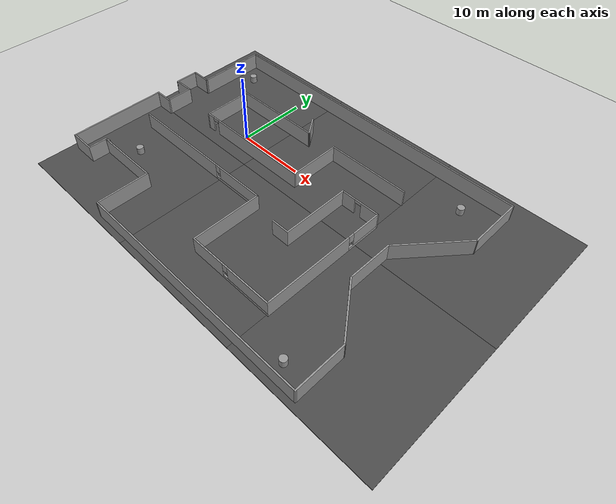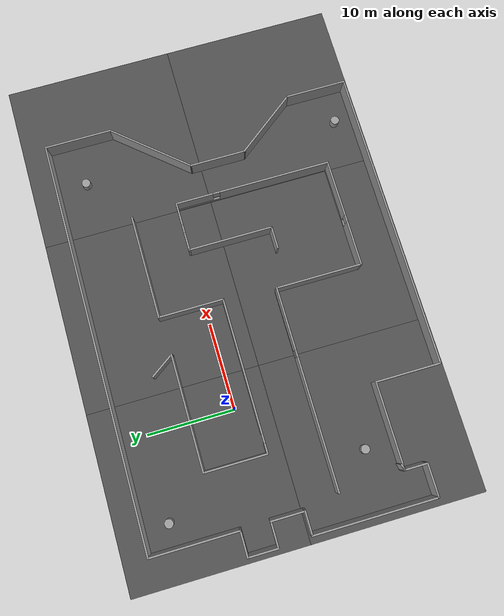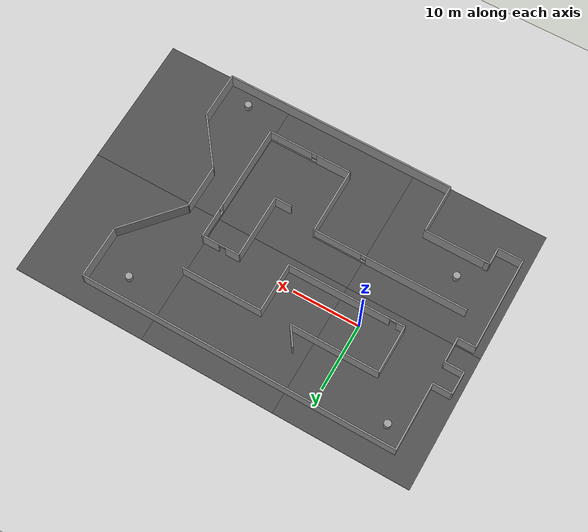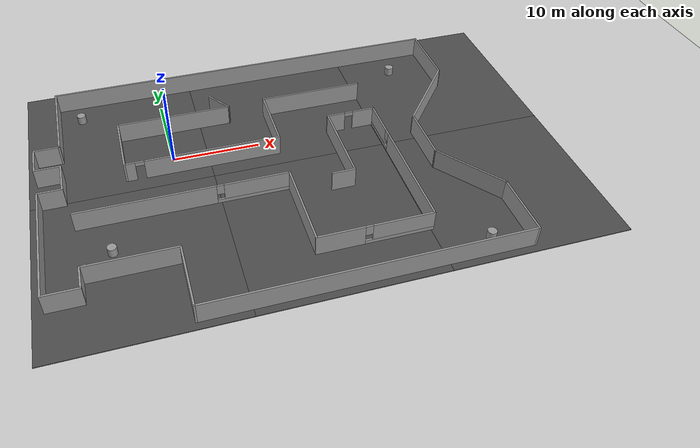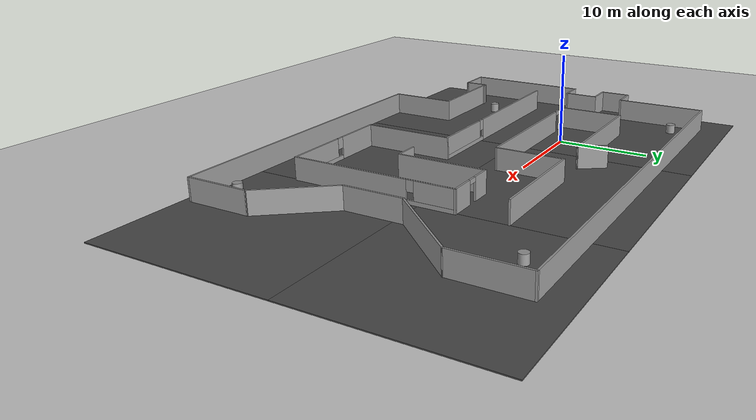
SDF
<sdf version="1.4">
 <world name="default">
  <light name="sun" type="directional">
   <pose>0 0 10 0 -0 0</pose>
   <diffuse>0.8 0.8 0.8 1</diffuse>
   <specular>0.2 0.2 0.2 1</specular>
   <attenuation>
    <range>1000</range>
    <constant>0.9</constant>
    <linear>0.01</linear>
    <quadratic>0.001</quadratic>
   </attenuation>
   <direction>-0.5 0.1 -0.9</direction>
  </light>
  <model name="ground_plane">
   <static>1</static>
   <link name="link">
    <collision name="collision">
     <geometry><plane><normal>0 0 1</normal><size>100 100</size></plane></geometry>
     <surface><friction><ode><mu>100</mu><mu2>50</mu2></ode></friction></surface>
    </collision>
    <visual name="visual">
     <cast_shadows>0</cast_shadows>
     <geometry><plane><normal>0 0 1</normal><size>100 100</size></plane></geometry>
     <material>
      <script><uri>file://media/materials/scripts/gazebo.material</uri><name>Gazebo/Grey</name></script>
     </material>
    </visual>
    <velocity_decay><linear>0</linear><angular>0</angular></velocity_decay>
   </link>
  </model>
  <physics type="ode">
   <max_step_size>0.001</max_step_size>
   <real_time_factor>1</real_time_factor>
   <real_time_update_rate>1000</real_time_update_rate>
   <gravity>0 0 -9.8</gravity>
  </physics>
  <scene><ambient>0.4 0.4 0.4 1</ambient><background>0.7 0.7 0.7 1</background><shadows>1</shadows></scene>
  <model name="corridor_hard">
   <link name="Wall_0">
    <pose>7.08513 -1.27 0 0 -0 0</pose>
    <visual name="Wall_0_Visual_0">
     <pose>-4.0588 0 1.25 0 -0 0</pose>
     <geometry><box><size>15.0527 0.2 2.5</size></box></geometry>
     <material>
      <script><uri>file://media/materials/scripts/gazebo.material</uri><name>Gazebo/Grey</name></script>
     </material>
    </visual>
    <collision name="Wall_0_Collision_0">
     <geometry><box><size>15.0527 0.2 2.5</size></box></geometry>
     <pose>-4.0588 0 1.25 0 -0 0</pose>
    </collision>
    <visual name="Wall_0_Visual_1">
     <pose>7.52635 0 0.25 0 -0 0</pose>
     <geometry><box><size>8.1176 0.2 0.5</size></box></geometry>
     <material>
      <script><uri>file://media/materials/scripts/gazebo.material</uri><name>Gazebo/Grey</name></script>
     </material>
    </visual>
    <collision name="Wall_0_Collision_1">
     <geometry><box><size>8.1176 0.2 0.5</size></box></geometry>
     <pose>7.52635 0 0.25 0 -0 0</pose>
    </collision>
    <visual name="Wall_0_Visual_2">
     <pose>7.92635 0 1.5 0 -0 0</pose>
     <geometry><box><size>7.3176 0.2 2</size></box></geometry>
     <material>
      <script><uri>file://media/materials/scripts/gazebo.material</uri><name>Gazebo/Grey</name></script>
     </material>
    </visual>
    <collision name="Wall_0_Collision_2">
     <geometry><box><size>7.3176 0.2 2</size></box></geometry>
     <pose>7.92635 0 1.5 0 -0 0</pose>
    </collision>
    <visual name="Wall_0_Visual_3">
     <pose>3.86755 0 1.9 0 -0 0</pose>
     <geometry><box><size>0.8 0.2 1.2</size></box></geometry>
     <material>
      <script><uri>file://media/materials/scripts/gazebo.material</uri><name>Gazebo/Grey</name></script>
     </material>
    </visual>
    <collision name="Wall_0_Collision_3">
     <geometry><box><size>0.8 0.2 1.2</size></box></geometry>
     <pose>3.86755 0 1.9 0 -0 0</pose>
    </collision>
    <velocity_decay><linear>0</linear><angular>0</angular></velocity_decay>
   </link>
   <link name="Wall_1">
    <collision name="Wall_1_Collision">
     <geometry><box><size>10.143 0.2 2.5</size></box></geometry>
     <pose>0 0 1.25 0 -0 0</pose>
    </collision>
    <visual name="Wall_1_Visual">
     <pose>0 0 1.25 0 -0 0</pose>
     <geometry><box><size>10.143 0.2 2.5</size></box></geometry>
     <material>
      <script><uri>file://media/materials/scripts/gazebo.material</uri><name>Gazebo/Grey</name></script>
     </material>
    </visual>
    <velocity_decay><linear>0</linear><angular>0</angular></velocity_decay>
    <pose>18.5703 -6.24148 0 0 0 -1.5708</pose>
   </link>
   <link name="Wall_10">
    <pose>10.2563 4.8489 0 0 -0 3.14159</pose>
    <visual name="Wall_10_Visual_0">
     <pose>-1.13402 0 1.25 0 -0 0</pose>
     <geometry><box><size>15.409 0.2 2.5</size></box></geometry>
     <material>
      <script><uri>file://media/materials/scripts/gazebo.material</uri><name>Gazebo/Grey</name></script>
     </material>
    </visual>
    <collision name="Wall_10_Collision_0">
     <geometry><box><size>15.409 0.2 2.5</size></box></geometry>
     <pose>-1.13402 0 1.25 0 -0 0</pose>
    </collision>
    <visual name="Wall_10_Visual_1">
     <pose>8.20448 0 1.25 0 -0 0</pose>
     <geometry><box><size>1.26805 0.2 2.5</size></box></geometry>
     <material>
      <script><uri>file://media/materials/scripts/gazebo.material</uri><name>Gazebo/Grey</name></script>
     </material>
    </visual>
    <collision name="Wall_10_Collision_1">
     <geometry><box><size>1.26805 0.2 2.5</size></box></geometry>
     <pose>8.20448 0 1.25 0 -0 0</pose>
    </collision>
    <visual name="Wall_10_Visual_2">
     <pose>7.07045 0 2.25 0 -0 0</pose>
     <geometry><box><size>1 0.2 0.5</size></box></geometry>
     <material>
      <script><uri>file://media/materials/scripts/gazebo.material</uri><name>Gazebo/Grey</name></script>
     </material>
    </visual>
    <collision name="Wall_10_Collision_2">
     <geometry><box><size>1 0.2 0.5</size></box></geometry>
     <pose>7.07045 0 2.25 0 -0 0</pose>
    </collision>
    <velocity_decay><linear>0</linear><angular>0</angular></velocity_decay>
   </link>
   <link name="Wall_11">
    <collision name="Wall_11_Collision">
     <geometry><box><size>7.34646 0.2 2.5</size></box></geometry>
     <pose>0 0 1.25 0 -0 0</pose>
    </collision>
    <visual name="Wall_11_Visual">
     <pose>0 0 1.25 0 -0 0</pose>
     <geometry><box><size>7.34646 0.2 2.5</size></box></geometry>
     <material>
      <script><uri>file://media/materials/scripts/gazebo.material</uri><name>Gazebo/Grey</name></script>
     </material>
    </visual>
    <velocity_decay><linear>0</linear><angular>0</angular></velocity_decay>
    <pose>1.51781 8.42213 0 0 -0 1.5708</pose>
   </link>
   <link name="Wall_12">
    <collision name="Wall_12_Collision">
     <geometry><box><size>13.2901 0.2 2.5</size></box></geometry>
     <pose>0 0 1.25 0 -0 0</pose>
    </collision>
    <visual name="Wall_12_Visual">
     <pose>0 0 1.25 0 -0 0</pose>
     <geometry><box><size>13.2901 0.2 2.5</size></box></geometry>
     <material>
      <script><uri>file://media/materials/scripts/gazebo.material</uri><name>Gazebo/Grey</name></script>
     </material>
    </visual>
    <velocity_decay><linear>0</linear><angular>0</angular></velocity_decay>
    <pose>8.06284 11.9954 0 0 -0 0</pose>
   </link>
   <link name="Wall_13">
    <collision name="Wall_13_Collision">
     <geometry><box><size>3.30123 0.2 2.5</size></box></geometry>
     <pose>0 0 1.25 0 -0 0</pose>
    </collision>
    <visual name="Wall_13_Visual">
     <pose>0 0 1.25 0 -0 0</pose>
     <geometry><box><size>3.30123 0.2 2.5</size></box></geometry>
     <material>
      <script><uri>file://media/materials/scripts/gazebo.material</uri><name>Gazebo/Grey</name></script>
     </material>
    </visual>
    <velocity_decay><linear>0</linear><angular>0</angular></velocity_decay>
    <pose>13.7234 13.269 0 0 -0 2.17778</pose>
   </link>
   <link name="Wall_15">
    <collision name="Wall_15_Collision">
     <geometry><box><size>9.77753 0.2 2.5</size></box></geometry>
     <pose>0 0 1.25 0 -0 0</pose>
    </collision>
    <visual name="Wall_15_Visual">
     <pose>0 0 1.25 0 -0 0</pose>
     <geometry><box><size>9.77753 0.2 2.5</size></box></geometry>
     <material>
      <script><uri>file://media/materials/scripts/gazebo.material</uri><name>Gazebo/Grey</name></script>
     </material>
    </visual>
    <velocity_decay><linear>0</linear><angular>0</angular></velocity_decay>
    <pose>0.789889 -8.67706 0 0 -0 0</pose>
   </link>
   <link name="Wall_16">
    <collision name="Wall_16_Collision">
     <geometry><box><size>7.62527 0.2 2.5</size></box></geometry>
     <pose>0 0 1.25 0 -0 0</pose>
    </collision>
    <visual name="Wall_16_Visual">
     <pose>0 0 1.25 0 -0 0</pose>
     <geometry><box><size>7.62527 0.2 2.5</size></box></geometry>
     <material>
      <script><uri>file://media/materials/scripts/gazebo.material</uri><name>Gazebo/Grey</name></script>
     </material>
    </visual>
    <velocity_decay><linear>0</linear><angular>0</angular></velocity_decay>
    <pose>5.57865 -12.3897 0 0 0 -1.5708</pose>
   </link>
   <link name="Wall_17">
    <collision name="Wall_17_Collision">
     <geometry><box><size>34.9589 0.2 2.5</size></box></geometry>
     <pose>0 0 1.25 0 -0 0</pose>
    </collision>
    <visual name="Wall_17_Visual">
     <pose>0 0 1.25 0 -0 0</pose>
     <geometry><box><size>34.9589 0.2 2.5</size></box></geometry>
     <material>
      <script><uri>file://media/materials/scripts/gazebo.material</uri><name>Gazebo/Grey</name></script>
     </material>
    </visual>
    <velocity_decay><linear>0</linear><angular>0</angular></velocity_decay>
    <pose>22.9581 -16.1023 0 0 -0 0</pose>
   </link>
   <link name="Wall_18">
    <collision name="Wall_18_Collision">
     <geometry><box><size>7.19482 0.2 2.5</size></box></geometry>
     <pose>0 0 1.25 0 -0 0</pose>
    </collision>
    <visual name="Wall_18_Visual">
     <pose>0 0 1.25 0 -0 0</pose>
     <geometry><box><size>7.19482 0.2 2.5</size></box></geometry>
     <material>
      <script><uri>file://media/materials/scripts/gazebo.material</uri><name>Gazebo/Grey</name></script>
     </material>
    </visual>
    <velocity_decay><linear>0</linear><angular>0</angular></velocity_decay>
    <pose>40.3375 -12.6049 0 0 -0 1.5708</pose>
   </link>
   <link name="Wall_19">
    <collision name="Wall_19_Collision">
     <geometry><box><size>8.72317 0.2 2.5</size></box></geometry>
     <pose>0 0 1.25 0 -0 0</pose>
    </collision>
    <visual name="Wall_19_Visual">
     <pose>0 0 1.25 0 -0 0</pose>
     <geometry><box><size>8.72317 0.2 2.5</size></box></geometry>
     <material>
      <script><uri>file://media/materials/scripts/gazebo.material</uri><name>Gazebo/Grey</name></script>
     </material>
    </visual>
    <velocity_decay><linear>0</linear><angular>0</angular></velocity_decay>
    <pose>37.7548 -5.71772 0 0 -0 2.22187</pose>
   </link>
   <link name="Wall_2">
    <pose>24.8676 -11.213 0 0 -0 0</pose>
    <visual name="Wall_2_Visual_0">
     <pose>-3.75906 0 1.25 0 -0 0</pose>
     <geometry><box><size>5.27669 0.2 2.5</size></box></geometry>
     <material>
      <script><uri>file://media/materials/scripts/gazebo.material</uri><name>Gazebo/Grey</name></script>
     </material>
    </visual>
    <collision name="Wall_2_Collision_0">
     <geometry><box><size>5.27669 0.2 2.5</size></box></geometry>
     <pose>-3.75906 0 1.25 0 -0 0</pose>
    </collision>
    <visual name="Wall_2_Visual_1">
     <pose>2.63834 0 0.25 0 -0 0</pose>
     <geometry><box><size>7.51811 0.2 0.5</size></box></geometry>
     <material>
      <script><uri>file://media/materials/scripts/gazebo.material</uri><name>Gazebo/Grey</name></script>
     </material>
    </visual>
    <collision name="Wall_2_Collision_1">
     <geometry><box><size>7.51811 0.2 0.5</size></box></geometry>
     <pose>2.63834 0 0.25 0 -0 0</pose>
    </collision>
    <visual name="Wall_2_Visual_2">
     <pose>3.03834 0 1.5 0 -0 0</pose>
     <geometry><box><size>6.71811 0.2 2</size></box></geometry>
     <material>
      <script><uri>file://media/materials/scripts/gazebo.material</uri><name>Gazebo/Grey</name></script>
     </material>
    </visual>
    <collision name="Wall_2_Collision_2">
     <geometry><box><size>6.71811 0.2 2</size></box></geometry>
     <pose>3.03834 0 1.5 0 -0 0</pose>
    </collision>
    <visual name="Wall_2_Visual_3">
     <pose>-0.720713 0 1.9 0 -0 0</pose>
     <geometry><box><size>0.8 0.2 1.2</size></box></geometry>
     <material>
      <script><uri>file://media/materials/scripts/gazebo.material</uri><name>Gazebo/Grey</name></script>
     </material>
    </visual>
    <collision name="Wall_2_Collision_3">
     <geometry><box><size>0.8 0.2 1.2</size></box></geometry>
     <pose>-0.720713 0 1.9 0 -0 0</pose>
    </collision>
    <velocity_decay><linear>0</linear><angular>0</angular></velocity_decay>
   </link>
   <link name="Wall_20">
    <collision name="Wall_20_Collision">
     <geometry><box><size>6.65676 0.2 2.5</size></box></geometry>
     <pose>0 0 1.25 0 -0 0</pose>
    </collision>
    <visual name="Wall_20_Visual">
     <pose>0 0 1.25 0 -0 0</pose>
     <geometry><box><size>6.65676 0.2 2.5</size></box></geometry>
     <material>
      <script><uri>file://media/materials/scripts/gazebo.material</uri><name>Gazebo/Grey</name></script>
     </material>
    </visual>
    <velocity_decay><linear>0</linear><angular>0</angular></velocity_decay>
    <pose>35.1721 0.900462 0 0 -0 1.5708</pose>
   </link>
   <link name="Wall_21">
    <collision name="Wall_21_Collision">
     <geometry><box><size>10.6584 0.2 2.5</size></box></geometry>
     <pose>0 0 1.25 0 -0 0</pose>
    </collision>
    <visual name="Wall_21_Visual">
     <pose>0 0 1.25 0 -0 0</pose>
     <geometry><box><size>10.6584 0.2 2.5</size></box></geometry>
     <material>
      <script><uri>file://media/materials/scripts/gazebo.material</uri><name>Gazebo/Grey</name></script>
     </material>
    </visual>
    <velocity_decay><linear>0</linear><angular>0</angular></velocity_decay>
    <pose>38.5619 8.11051 0 0 -0 0.865518</pose>
   </link>
   <link name="Wall_22">
    <collision name="Wall_22_Collision">
     <geometry><box><size>7.94811 0.2 2.5</size></box></geometry>
     <pose>0 0 1.25 0 -0 0</pose>
    </collision>
    <visual name="Wall_22_Visual">
     <pose>0 0 1.25 0 -0 0</pose>
     <geometry><box><size>7.94811 0.2 2.5</size></box></geometry>
     <material>
      <script><uri>file://media/materials/scripts/gazebo.material</uri><name>Gazebo/Grey</name></script>
     </material>
    </visual>
    <velocity_decay><linear>0</linear><angular>0</angular></velocity_decay>
    <pose>41.9517 15.9662 0 0 -0 1.5708</pose>
   </link>
   <link name="Wall_23">
    <collision name="Wall_23_Collision">
     <geometry><box><size>47.3343 0.2 2.5</size></box></geometry>
     <pose>0 0 1.25 0 -0 0</pose>
    </collision>
    <visual name="Wall_23_Visual">
     <pose>0 0 1.25 0 -0 0</pose>
     <geometry><box><size>47.3343 0.2 2.5</size></box></geometry>
     <material>
      <script><uri>file://media/materials/scripts/gazebo.material</uri><name>Gazebo/Grey</name></script>
     </material>
    </visual>
    <velocity_decay><linear>0</linear><angular>0</angular></velocity_decay>
    <pose>18.3846 19.8403 0 0 -0 3.14159</pose>
   </link>
   <link name="Wall_24">
    <collision name="Wall_24_Collision">
     <geometry><box><size>10.208 0.2 2.5</size></box></geometry>
     <pose>0 0 1.25 0 -0 0</pose>
    </collision>
    <visual name="Wall_24_Visual">
     <pose>0 0 1.25 0 -0 0</pose>
     <geometry><box><size>10.208 0.2 2.5</size></box></geometry>
     <material>
      <script><uri>file://media/materials/scripts/gazebo.material</uri><name>Gazebo/Grey</name></script>
     </material>
    </visual>
    <velocity_decay><linear>0</linear><angular>0</angular></velocity_decay>
    <pose>-5.18261 14.8363 0 0 0 -1.5708</pose>
   </link>
   <link name="Wall_25">
    <collision name="Wall_25_Collision">
     <geometry><box><size>2.99793 0.2 2.5</size></box></geometry>
     <pose>0 0 1.25 0 -0 0</pose>
    </collision>
    <visual name="Wall_25_Visual">
     <pose>0 0 1.25 0 -0 0</pose>
     <geometry><box><size>2.99793 0.2 2.5</size></box></geometry>
     <material>
      <script><uri>file://media/materials/scripts/gazebo.material</uri><name>Gazebo/Grey</name></script>
     </material>
    </visual>
    <velocity_decay><linear>0</linear><angular>0</angular></velocity_decay>
    <pose>-6.58158 9.83231 0 0 -0 3.14159</pose>
   </link>
   <link name="Wall_26">
    <collision name="Wall_26_Collision">
     <geometry><box><size>3.53599 0.2 2.5</size></box></geometry>
     <pose>0 0 1.25 0 -0 0</pose>
    </collision>
    <visual name="Wall_26_Visual">
     <pose>0 0 1.25 0 -0 0</pose>
     <geometry><box><size>3.53599 0.2 2.5</size></box></geometry>
     <material>
      <script><uri>file://media/materials/scripts/gazebo.material</uri><name>Gazebo/Grey</name></script>
     </material>
    </visual>
    <velocity_decay><linear>0</linear><angular>0</angular></velocity_decay>
    <pose>-7.98054 8.16432 0 0 0 -1.5708</pose>
   </link>
   <link name="Wall_27">
    <collision name="Wall_27_Collision">
     <geometry><box><size>2.99793 0.2 2.5</size></box></geometry>
     <pose>0 0 1.25 0 -0 0</pose>
    </collision>
    <visual name="Wall_27_Visual">
     <pose>0 0 1.25 0 -0 0</pose>
     <geometry><box><size>2.99793 0.2 2.5</size></box></geometry>
     <material>
      <script><uri>file://media/materials/scripts/gazebo.material</uri><name>Gazebo/Grey</name></script>
     </material>
    </visual>
    <velocity_decay><linear>0</linear><angular>0</angular></velocity_decay>
    <pose>-6.58158 6.49632 0 0 -0 0</pose>
   </link>
   <link name="Wall_28">
    <collision name="Wall_28_Collision">
     <geometry><box><size>3.96644 0.2 2.5</size></box></geometry>
     <pose>0 0 1.25 0 -0 0</pose>
    </collision>
    <visual name="Wall_28_Visual">
     <pose>0 0 1.25 0 -0 0</pose>
     <geometry><box><size>3.96644 0.2 2.5</size></box></geometry>
     <material>
      <script><uri>file://media/materials/scripts/gazebo.material</uri><name>Gazebo/Grey</name></script>
     </material>
    </visual>
    <velocity_decay><linear>0</linear><angular>0</angular></velocity_decay>
    <pose>-5.18261 4.6131 0 0 0 -1.5708</pose>
   </link>
   <link name="Wall_29">
    <collision name="Wall_29_Collision">
     <geometry><box><size>2.7827 0.2 2.5</size></box></geometry>
     <pose>0 0 1.25 0 -0 0</pose>
    </collision>
    <visual name="Wall_29_Visual">
     <pose>0 0 1.25 0 -0 0</pose>
     <geometry><box><size>2.7827 0.2 2.5</size></box></geometry>
     <material>
      <script><uri>file://media/materials/scripts/gazebo.material</uri><name>Gazebo/Grey</name></script>
     </material>
    </visual>
    <velocity_decay><linear>0</linear><angular>0</angular></velocity_decay>
    <pose>-6.47396 2.72988 0 0 -0 3.14159</pose>
   </link>
   <link name="Wall_3">
    <pose>31.165 -2.12067 0 0 -0 1.5708</pose>
    <visual name="Wall_3_Visual_0">
     <pose>-2.63055 0 1.25 0 -0 0</pose>
     <geometry><box><size>13.1235 0.2 2.5</size></box></geometry>
     <material>
      <script><uri>file://media/materials/scripts/gazebo.material</uri><name>Gazebo/Grey</name></script>
     </material>
    </visual>
    <collision name="Wall_3_Collision_0">
     <geometry><box><size>13.1235 0.2 2.5</size></box></geometry>
     <pose>-2.63055 0 1.25 0 -0 0</pose>
    </collision>
    <visual name="Wall_3_Visual_1">
     <pose>6.56175 0 0.25 0 -0 0</pose>
     <geometry><box><size>5.2611 0.2 0.5</size></box></geometry>
     <material>
      <script><uri>file://media/materials/scripts/gazebo.material</uri><name>Gazebo/Grey</name></script>
     </material>
    </visual>
    <collision name="Wall_3_Collision_1">
     <geometry><box><size>5.2611 0.2 0.5</size></box></geometry>
     <pose>6.56175 0 0.25 0 -0 0</pose>
    </collision>
    <visual name="Wall_3_Visual_2">
     <pose>6.96175 0 1.5 0 -0 0</pose>
     <geometry><box><size>4.4611 0.2 2</size></box></geometry>
     <material>
      <script><uri>file://media/materials/scripts/gazebo.material</uri><name>Gazebo/Grey</name></script>
     </material>
    </visual>
    <collision name="Wall_3_Collision_2">
     <geometry><box><size>4.4611 0.2 2</size></box></geometry>
     <pose>6.96175 0 1.5 0 -0 0</pose>
    </collision>
    <visual name="Wall_3_Visual_3">
     <pose>4.3312 0 1.9 0 -0 0</pose>
     <geometry><box><size>0.8 0.2 1.2</size></box></geometry>
     <material>
      <script><uri>file://media/materials/scripts/gazebo.material</uri><name>Gazebo/Grey</name></script>
     </material>
    </visual>
    <collision name="Wall_3_Collision_3">
     <geometry><box><size>0.8 0.2 1.2</size></box></geometry>
     <pose>4.3312 0 1.9 0 -0 0</pose>
    </collision>
    <velocity_decay><linear>0</linear><angular>0</angular></velocity_decay>
   </link>
   <link name="Wall_30">
    <collision name="Wall_30_Collision">
     <geometry><box><size>14.1896 0.2 2.5</size></box></geometry>
     <pose>0 0 1.25 0 -0 0</pose>
    </collision>
    <visual name="Wall_30_Visual">
     <pose>0 0 1.25 0 -0 0</pose>
     <geometry><box><size>14.1896 0.2 2.5</size></box></geometry>
     <material>
      <script><uri>file://media/materials/scripts/gazebo.material</uri><name>Gazebo/Grey</name></script>
     </material>
    </visual>
    <velocity_decay><linear>0</linear><angular>0</angular></velocity_decay>
    <pose>-7.76532 -4.26494 0 0 0 -1.5708</pose>
   </link>
   <link name="Wall_31">
    <collision name="Wall_31_Collision">
     <geometry><box><size>3.85883 0.2 2.5</size></box></geometry>
     <pose>0 0 1.25 0 -0 0</pose>
    </collision>
    <visual name="Wall_31_Visual">
     <pose>0 0 1.25 0 -0 0</pose>
     <geometry><box><size>3.85883 0.2 2.5</size></box></geometry>
     <material>
      <script><uri>file://media/materials/scripts/gazebo.material</uri><name>Gazebo/Grey</name></script>
     </material>
    </visual>
    <velocity_decay><linear>0</linear><angular>0</angular></velocity_decay>
    <pose>-5.9359 -11.2598 0 0 -0 0</pose>
   </link>
   <link name="Wall_32">
    <collision name="Wall_32_Collision">
     <geometry><box><size>2.77802 0.2 2.5</size></box></geometry>
     <pose>0 0 1.25 0 -0 0</pose>
    </collision>
    <visual name="Wall_32_Visual">
     <pose>0 0 1.25 0 -0 0</pose>
     <geometry><box><size>2.77802 0.2 2.5</size></box></geometry>
     <material>
      <script><uri>file://media/materials/scripts/gazebo.material</uri><name>Gazebo/Grey</name></script>
     </material>
    </visual>
    <velocity_decay><linear>0</linear><angular>0</angular></velocity_decay>
    <pose>-4.10649 -9.97076 0 0 -0 1.5708</pose>
   </link>
   <link name="Wall_33">
    <collision name="Wall_33_Collision">
     <geometry><box><size>0.799464 0.2 2.5</size></box></geometry>
     <pose>0 0 1.25 0 -0 0</pose>
    </collision>
    <visual name="Wall_33_Visual">
     <pose>0 0 1.25 0 -0 0</pose>
     <geometry><box><size>0.799464 0.2 2.5</size></box></geometry>
     <material>
      <script><uri>file://media/materials/scripts/gazebo.material</uri><name>Gazebo/Grey</name></script>
     </material>
    </visual>
    <velocity_decay><linear>0</linear><angular>0</angular></velocity_decay>
    <pose>-3.81296 -8.62107 0 0 -0 0.203868</pose>
   </link>
   <link name="Wall_4">
    <pose>28.3347 6.97161 0 0 -0 3.14159</pose>
    <visual name="Wall_4_Visual_0">
     <pose>-1.58634 0 1.25 0 -0 0</pose>
     <geometry><box><size>2.68789 0.2 2.5</size></box></geometry>
     <material>
      <script><uri>file://media/materials/scripts/gazebo.material</uri><name>Gazebo/Grey</name></script>
     </material>
    </visual>
    <collision name="Wall_4_Collision_0">
     <geometry><box><size>2.68789 0.2 2.5</size></box></geometry>
     <pose>-1.58634 0 1.25 0 -0 0</pose>
    </collision>
    <visual name="Wall_4_Visual_1">
     <pose>1.84395 0 1.25 0 -0 0</pose>
     <geometry><box><size>2.17268 0.2 2.5</size></box></geometry>
     <material>
      <script><uri>file://media/materials/scripts/gazebo.material</uri><name>Gazebo/Grey</name></script>
     </material>
    </visual>
    <collision name="Wall_4_Collision_1">
     <geometry><box><size>2.17268 0.2 2.5</size></box></geometry>
     <pose>1.84395 0 1.25 0 -0 0</pose>
    </collision>
    <visual name="Wall_4_Visual_2">
     <pose>0.257608 0 2.25 0 -0 0</pose>
     <geometry><box><size>1 0.2 0.5</size></box></geometry>
     <material>
      <script><uri>file://media/materials/scripts/gazebo.material</uri><name>Gazebo/Grey</name></script>
     </material>
    </visual>
    <collision name="Wall_4_Collision_2">
     <geometry><box><size>1 0.2 0.5</size></box></geometry>
     <pose>0.257608 0 2.25 0 -0 0</pose>
    </collision>
    <velocity_decay><linear>0</linear><angular>0</angular></velocity_decay>
   </link>
   <link name="Wall_5">
    <collision name="Wall_5_Collision">
     <geometry><box><size>9.89372 0.2 2.5</size></box></geometry>
     <pose>0 0 1.25 0 -0 0</pose>
    </collision>
    <visual name="Wall_5_Visual">
     <pose>0 0 1.25 0 -0 0</pose>
     <geometry><box><size>9.89372 0.2 2.5</size></box></geometry>
     <material>
      <script><uri>file://media/materials/scripts/gazebo.material</uri><name>Gazebo/Grey</name></script>
     </material>
    </visual>
    <velocity_decay><linear>0</linear><angular>0</angular></velocity_decay>
    <pose>25.5045 2.12475 0 0 0 -1.5708</pose>
   </link>
   <link name="Wall_6">
    <collision name="Wall_6_Collision">
     <geometry><box><size>2.6765 0.2 2.5</size></box></geometry>
     <pose>0 0 1.25 0 -0 0</pose>
    </collision>
    <visual name="Wall_6_Visual">
     <pose>0 0 1.25 0 -0 0</pose>
     <geometry><box><size>2.6765 0.2 2.5</size></box></geometry>
     <material>
      <script><uri>file://media/materials/scripts/gazebo.material</uri><name>Gazebo/Grey</name></script>
     </material>
    </visual>
    <velocity_decay><linear>0</linear><angular>0</angular></velocity_decay>
    <pose>24.2662 -2.72211 0 0 -0 3.14159</pose>
   </link>
   <link name="Wall_8">
    <collision name="Wall_8_Collision">
     <geometry><box><size>12.1579 0.2 2.5</size></box></geometry>
     <pose>0 0 1.25 0 -0 0</pose>
    </collision>
    <visual name="Wall_8_Visual">
     <pose>0 0 1.25 0 -0 0</pose>
     <geometry><box><size>12.1579 0.2 2.5</size></box></geometry>
     <material>
      <script><uri>file://media/materials/scripts/gazebo.material</uri><name>Gazebo/Grey</name></script>
     </material>
    </visual>
    <velocity_decay><linear>0</linear><angular>0</angular></velocity_decay>
    <pose>24.9738 12.2784 0 0 -0 3.14159</pose>
   </link>
   <link name="Wall_9">
    <collision name="Wall_9_Collision">
     <geometry><box><size>7.62949 0.2 2.5</size></box></geometry>
     <pose>0 0 1.25 0 -0 0</pose>
    </collision>
    <visual name="Wall_9_Visual">
     <pose>0 0 1.25 0 -0 0</pose>
     <geometry><box><size>7.62949 0.2 2.5</size></box></geometry>
     <material>
      <script><uri>file://media/materials/scripts/gazebo.material</uri><name>Gazebo/Grey</name></script>
     </material>
    </visual>
    <velocity_decay><linear>0</linear><angular>0</angular></velocity_decay>
    <pose>18.9948 8.56364 0 0 0 -1.5708</pose>
   </link>
   <static>1</static>
   <pose>-7 -7 0 0 -0 0</pose>
  </model>
  <model name="asphalt_plane">
   <static>1</static>
   <link name="link">
    <collision name="collision"><geometry><box><size>20 20 0.1</size></box></geometry></collision>
    <visual name="visual">
     <cast_shadows>0</cast_shadows>
     <geometry><box><size>20 20 0.1</size></box></geometry>
     <material>
      <script>
       <uri>model://asphalt_plane/materials/scripts</uri>
       <uri>model://asphalt_plane/materials/textures</uri>
       <name>vrc/asphalt</name>
      </script>
     </material>
    </visual>
    <velocity_decay><linear>0</linear><angular>0</angular></velocity_decay>
   </link>
   <pose>-6 6 0 0 -0 0</pose>
  </model>
  <model name="asphalt_plane_0">
   <static>1</static>
   <link name="link">
    <collision name="collision"><geometry><box><size>20 20 0.1</size></box></geometry></collision>
    <visual name="visual">
     <cast_shadows>0</cast_shadows>
     <geometry><box><size>20 20 0.1</size></box></geometry>
     <material>
      <script>
       <uri>model://asphalt_plane/materials/scripts</uri>
       <uri>model://asphalt_plane/materials/textures</uri>
       <name>vrc/asphalt</name>
      </script>
     </material>
    </visual>
    <velocity_decay><linear>0</linear><angular>0</angular></velocity_decay>
   </link>
   <pose>-6 -14 0 0 -0 0</pose>
  </model>
  <model name="asphalt_plane_1">
   <static>1</static>
   <link name="link">
    <collision name="collision"><geometry><box><size>20 20 0.1</size></box></geometry></collision>
    <visual name="visual">
     <cast_shadows>0</cast_shadows>
     <geometry><box><size>20 20 0.1</size></box></geometry>
     <material>
      <script>
       <uri>model://asphalt_plane/materials/scripts</uri>
       <uri>model://asphalt_plane/materials/textures</uri>
       <name>vrc/asphalt</name>
      </script>
     </material>
    </visual>
    <velocity_decay><linear>0</linear><angular>0</angular></velocity_decay>
   </link>
   <pose>14 6 0 0 -0 0</pose>
  </model>
  <model name="asphalt_plane_2">
   <static>1</static>
   <link name="link">
    <collision name="collision"><geometry><box><size>20 20 0.1</size></box></geometry></collision>
    <visual name="visual">
     <cast_shadows>0</cast_shadows>
     <geometry><box><size>20 20 0.1</size></box></geometry>
     <material>
      <script>
       <uri>model://asphalt_plane/materials/scripts</uri>
       <uri>model://asphalt_plane/materials/textures</uri>
       <name>vrc/asphalt</name>
      </script>
     </material>
    </visual>
    <velocity_decay><linear>0</linear><angular>0</angular></velocity_decay>
   </link>
   <pose>14 -14 0 0 -0 0</pose>
  </model>
  <model name="asphalt_plane_3">
   <static>1</static>
   <link name="link">
    <collision name="collision"><geometry><box><size>20 20 0.1</size></box></geometry></collision>
    <visual name="visual">
     <cast_shadows>0</cast_shadows>
     <geometry><box><size>20 20 0.1</size></box></geometry>
     <material>
      <script>
       <uri>model://asphalt_plane/materials/scripts</uri>
       <uri>model://asphalt_plane/materials/textures</uri>
       <name>vrc/asphalt</name>
      </script>
     </material>
    </visual>
    <velocity_decay><linear>0</linear><angular>0</angular></velocity_decay>
   </link>
   <pose>34 6 0 0 -0 0</pose>
  </model>
  <model name="asphalt_plane_4">
   <static>1</static>
   <link name="link">
    <collision name="collision"><geometry><box><size>20 20 0.1</size></box></geometry></collision>
    <visual name="visual">
     <cast_shadows>0</cast_shadows>
     <geometry><box><size>20 20 0.1</size></box></geometry>
     <material>
      <script>
       <uri>model://asphalt_plane/materials/scripts</uri>
       <uri>model://asphalt_plane/materials/textures</uri>
       <name>vrc/asphalt</name>
      </script>
     </material>
    </visual>
    <velocity_decay><linear>0</linear><angular>0</angular></velocity_decay>
   </link>
   <pose>34 -14 0 0 -0 0</pose>
  </model>
  <model name="unit_cylinder_1">
   <pose>-9.58871 10 0.549997 -2e-06 5e-06 3.3e-05</pose>
   <link name="link">
    <inertial>
     <mass>1</mass>
     <inertia><ixx>1</ixx><ixy>0</ixy><ixz>0</ixz><iyy>1</iyy><iyz>0</iyz><izz>1</izz></inertia>
    </inertial>
    <collision name="collision">
     <geometry><cylinder><radius>0.5</radius><length>1</length></cylinder></geometry>
    </collision>
    <visual name="visual">
     <geometry><cylinder><radius>0.5</radius><length>1</length></cylinder></geometry>
     <material>
      <script><uri>file://media/materials/scripts/gazebo.material</uri><name>Gazebo/Grey</name></script>
     </material>
    </visual>
    <velocity_decay><linear>0</linear><angular>0</angular></velocity_decay>
   </link>
   <static>0</static>
  </model>
  <model name="unit_cylinder_2">
   <pose>30 9.48649 0.549991 2e-06 6.46235e-27 2.5e-05</pose>
   <link name="link">
    <inertial>
     <mass>1</mass>
     <inertia><ixx>1</ixx><ixy>0</ixy><ixz>0</ixz><iyy>1</iyy><iyz>0</iyz><izz>1</izz></inertia>
    </inertial>
    <collision name="collision">
     <geometry><cylinder><radius>0.5</radius><length>1</length></cylinder></geometry>
    </collision>
    <visual name="visual">
     <geometry><cylinder><radius>0.5</radius><length>1</length></cylinder></geometry>
     <material>
      <script><uri>file://media/materials/scripts/gazebo.material</uri><name>Gazebo/Grey</name></script>
     </material>
    </visual>
    <velocity_decay><linear>0</linear><angular>0</angular></velocity_decay>
   </link>
   <static>0</static>
  </model>
  <model name="unit_cylinder_3">
   <pose>-8 -12.5818 0.550001 -2e-06 -1e-06 2.7e-05</pose>
   <link name="link">
    <inertial>
     <mass>1</mass>
     <inertia><ixx>1</ixx><ixy>0</ixy><ixz>0</ixz><iyy>1</iyy><iyz>0</iyz><izz>1</izz></inertia>
    </inertial>
    <collision name="collision">
     <geometry><cylinder><radius>0.5</radius><length>1</length></cylinder></geometry>
    </collision>
    <visual name="visual">
     <geometry><cylinder><radius>0.5</radius><length>1</length></cylinder></geometry>
     <material>
      <script><uri>file://media/materials/scripts/gazebo.material</uri><name>Gazebo/Grey</name></script>
     </material>
    </visual>
    <velocity_decay><linear>0</linear><angular>0</angular></velocity_decay>
   </link>
   <static>0</static>
  </model>
  <model name="unit_cylinder_4">
   <pose>29.4858 -21 0.549991 -2e-06 -0 3e-06</pose>
   <link name="link">
    <inertial>
     <mass>1</mass>
     <inertia><ixx>1</ixx><ixy>0</ixy><ixz>0</ixz><iyy>1</iyy><iyz>0</iyz><izz>1</izz></inertia>
    </inertial>
    <collision name="collision">
     <geometry><cylinder><radius>0.5</radius><length>1</length></cylinder></geometry>
    </collision>
    <visual name="visual">
     <geometry><cylinder><radius>0.5</radius><length>1</length></cylinder></geometry>
     <material>
      <script><uri>file://media/materials/scripts/gazebo.material</uri><name>Gazebo/Grey</name></script>
     </material>
    </visual>
    <velocity_decay><linear>0</linear><angular>0</angular></velocity_decay>
   </link>
   <static>0</static>
  </model>
 </world>
</sdf>
